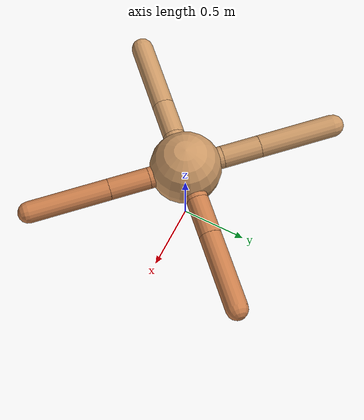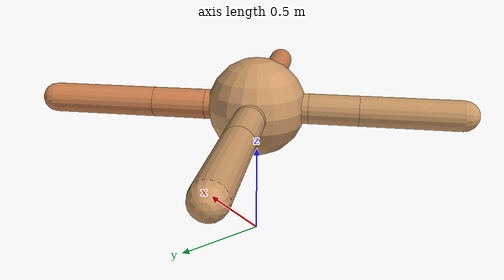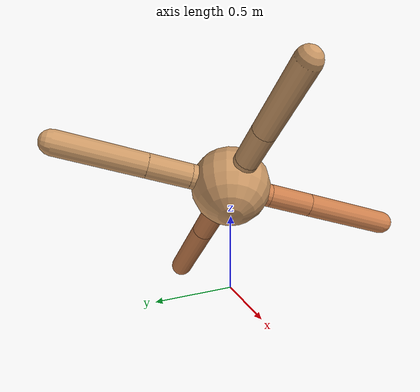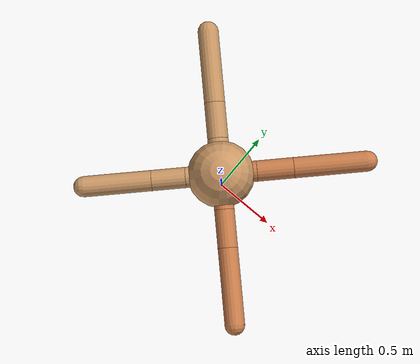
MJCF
<?xml version="1.0" ?>
<mujoco model="ant">

	<compiler angle="degree" coordinate="local" inertiafromgeom="true"/>

	<option integrator="RK4" timestep="0.01"/>

	<custom>

		<numeric data="0.0 0.0 0.55 1.0 0.0 0.0 0.0 0.0 1.0 0.0 -1.0 0.0 -1.0 0.0 1.0" name="init_qpos"/>

	</custom>

	<default>

		<joint armature="1" damping="1" limited="true"/>

		<geom conaffinity="0" condim="3" density="5.0" friction="1.5 0.1 0.1" margin="0.01" rgba="0.8 0.6 0.4 1"/>

	</default>

	<worldbody>

		<body name="torso" pos="0 0 0.75">

			<geom name="torso_geom" pos="0 0 0" size="0.26773818422070284" type="sphere"/>

			<!--joint armature="0" damping="0" limited="false" margin="0.01" name="root" pos="0 0 0" type="free"/-->

			<body name="front_left_leg" pos="0 0 0">

				<geom fromto="0 0 0 0.2 0.2 0" name="aux_1_geom" size="0.08247031983821997" type="capsule" rgba=".8 .5 .3 1"/>

				<body name="aux_1" pos="0.2 0.2 0">

					<joint axis="0 0 1" name="hip_1" pos="0.0 0.0 0.0" range="-40 40" type="hinge"/>

					<geom fromto="0 0 0 0.20666884376341943 0.20666884376341943 0" name="left_leg_geom" size="0.08247031983821997" type="capsule" rgba=".8 .5 .3 1"/>

					<body pos="0.20666884376341943 0.20666884376341943 0" name="front_left_foot">

						<joint axis="-1 1 0" name="ankle_1" pos="0.0 0.0 0.0" range="30 100" type="hinge"/>

						<geom fromto="0 0 0 0.41333768752683886 0.41333768752683886 0" name="left_ankle_geom" size="0.08247031983821997" type="capsule" rgba=".8 .5 .3 1"/>

					</body>

				</body>

			</body>

			<body name="front_right_leg" pos="0 0 0">

				<geom fromto="0 0 0 -0.2 0.2 0" name="aux_2_geom" size="0.08322704371546748" type="capsule"/>

				<body name="aux_2" pos="-0.2 0.2 0">

					<joint axis="0 0 1" name="hip_2" pos="0.0 0.0 0.0" range="-40 40" type="hinge"/>

					<geom fromto="0 0 0 -0.20514685626043516 0.20514685626043516 0" name="right_leg_geom" size="0.08322704371546748" type="capsule"/>

					<body pos="-0.20514685626043516 0.20514685626043516 0" name="front_right_foot">

						<joint axis="1 1 0" name="ankle_2" pos="0.0 0.0 0.0" range="-100 -30" type="hinge"/>

						<geom fromto="0 0 0 -0.4102937125208703 0.4102937125208703 0" name="right_ankle_geom" size="0.08322704371546748" type="capsule"/>

					</body>

				</body>

			</body>

			<body name="left_back_leg" pos="0 0 0">

				<geom fromto="0 0 0 -0.2 -0.2 0" name="aux_3_geom" size="0.08227774500472272" type="capsule"/>

				<body name="aux_3" pos="-0.2 -0.2 0">

					<joint axis="0 0 1" name="hip_3" pos="0.0 0.0 0.0" range="-40 40" type="hinge"/>

					<geom fromto="0 0 0 -0.1894638243722363 -0.1894638243722363 0" name="back_leg_geom" size="0.08227774500472272" type="capsule"/>

					<body pos="-0.1894638243722363 -0.1894638243722363 0" name="left_back_foot">

						<joint axis="-1 1 0" name="ankle_3" pos="0.0 0.0 0.0" range="-100 -30" type="hinge"/>

						<geom fromto="0 0 0 -0.3789276487444726 -0.3789276487444726 0" name="third_ankle_geom" size="0.08227774500472272" type="capsule"/>

					</body>

				</body>

			</body>

			<body name="right_back_leg" pos="0 0 0">

				<geom fromto="0 0 0 0.2 -0.2 0" name="aux_4_geom" size="0.07959762958424543" type="capsule" rgba=".8 .5 .3 1"/>

				<body name="aux_4" pos="0.2 -0.2 0">

					<joint axis="0 0 1" name="hip_4" pos="0.0 0.0 0.0" range="-40 40" type="hinge"/>

					<geom fromto="0 0 0 0.21373881148994356 -0.21373881148994356 0" name="rightback_leg_geom" size="0.07959762958424543" type="capsule" rgba=".8 .5 .3 1"/>

					<body pos="0.21373881148994356 -0.21373881148994356 0" name="right_back_foot">

						<joint axis="1 1 0" name="ankle_4" pos="0.0 0.0 0.0" range="30 100" type="hinge"/>

						<geom fromto="0 0 0 0.4274776229798871 -0.4274776229798871 0" name="fourth_ankle_geom" size="0.07959762958424543" type="capsule" rgba=".8 .5 .3 1"/>

					</body>

				</body>

			</body>

		</body>

	</worldbody>

	<actuator>

		<motor ctrllimited="true" ctrlrange="-1.0 1.0" joint="hip_4" gear="150"/>

		<motor ctrllimited="true" ctrlrange="-1.0 1.0" joint="ankle_4" gear="150"/>

		<motor ctrllimited="true" ctrlrange="-1.0 1.0" joint="hip_1" gear="150"/>

		<motor ctrllimited="true" ctrlrange="-1.0 1.0" joint="ankle_1" gear="150"/>

		<motor ctrllimited="true" ctrlrange="-1.0 1.0" joint="hip_2" gear="150"/>

		<motor ctrllimited="true" ctrlrange="-1.0 1.0" joint="ankle_2" gear="150"/>

		<motor ctrllimited="true" ctrlrange="-1.0 1.0" joint="hip_3" gear="150"/>

		<motor ctrllimited="true" ctrlrange="-1.0 1.0" joint="ankle_3" gear="150"/>

	</actuator>

</mujoco>
